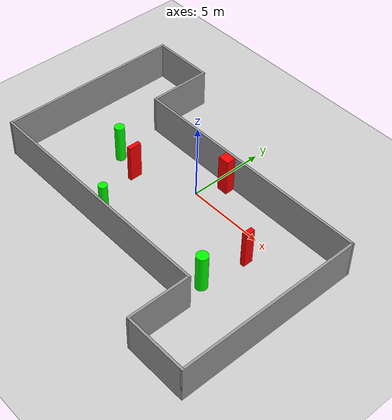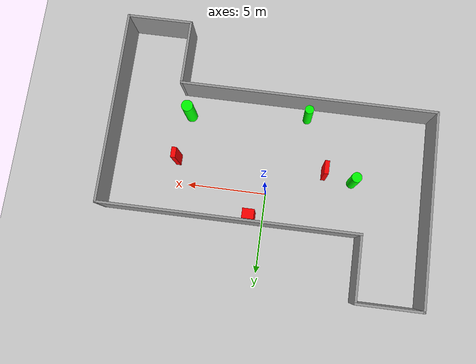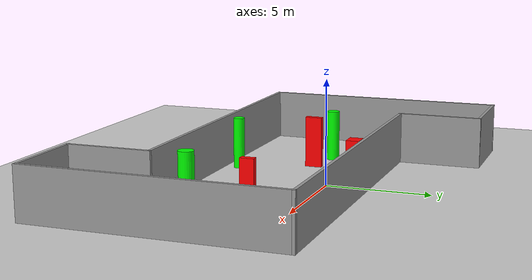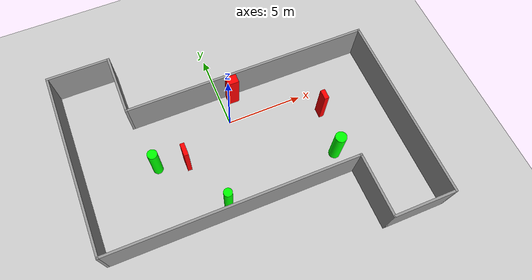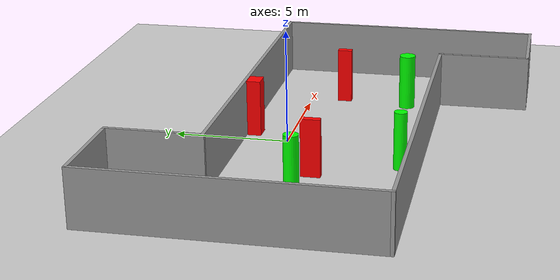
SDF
<sdf version="1.7">
 <world name="default">
  <light name="sun" type="directional">
   <pose>0 0 10 0 -0 0</pose>
   <diffuse>0.8 0.8 0.8 1</diffuse>
   <specular>0.2 0.2 0.2 1</specular>
   <attenuation>
    <range>1000</range>
    <constant>0.9</constant>
    <linear>0.01</linear>
    <quadratic>0.001</quadratic>
   </attenuation>
   <direction>-0.5 0.1 -0.9</direction>
   <spot><inner_angle>0</inner_angle><outer_angle>0</outer_angle><falloff>0</falloff></spot>
  </light>
  <model name="ground_plane">
   <static>1</static>
   <link name="link">
    <collision name="collision">
     <geometry><plane><normal>0 0 1</normal><size>100 100</size></plane></geometry>
     <surface>
      <contact><collide_bitmask>65535</collide_bitmask></contact>
      <friction><ode><mu>100</mu><mu2>50</mu2></ode></friction>
     </surface>
    </collision>
    <visual name="visual">
     <cast_shadows>0</cast_shadows>
     <geometry><plane><normal>0 0 1</normal><size>100 100</size></plane></geometry>
     <material>
      <script><uri>file://media/materials/scripts/gazebo.material</uri><name>Gazebo/Grey</name></script>
     </material>
    </visual>
   </link>
  </model>
  <gravity>0 0 -9.8</gravity>
  <magnetic_field>6e-06 2.3e-05 -4.2e-05</magnetic_field>
  <atmosphere type="adiabatic"/>
  <physics type="ode">
   <max_step_size>0.001</max_step_size>
   <real_time_factor>1</real_time_factor>
   <real_time_update_rate>1000</real_time_update_rate>
  </physics>
  <scene><ambient>0.4 0.4 0.4 1</ambient><background>0.7 0.7 0.7 1</background><shadows>1</shadows></scene>
  <spherical_coordinates>
   <surface_model>EARTH_WGS84</surface_model>
   <latitude_deg>0</latitude_deg>
   <longitude_deg>0</longitude_deg>
   <elevation>0</elevation>
   <heading_deg>0</heading_deg>
  </spherical_coordinates>
  <model name="my_base_walls">
   <link name="Wall_13">
    <collision name="Wall_13_Collision">
     <geometry><box><size>12.15 0.15 2.5</size></box></geometry>
     <pose>0 0 1.25 0 -0 0</pose>
    </collision>
    <visual name="Wall_13_Visual">
     <pose>0 0 1.25 0 -0 0</pose>
     <geometry><box><size>12.15 0.15 2.5</size></box></geometry>
     <material>
      <script><uri>file://media/materials/scripts/gazebo.material</uri><name>Gazebo/Grey</name></script>
      <ambient>1 1 1 1</ambient>
     </material>
     <meta><layer>0</layer></meta>
    </visual>
    <pose>10 -2 0 0 -0 1.5708</pose>
   </link>
   <link name="Wall_15">
    <collision name="Wall_15_Collision">
     <geometry><box><size>16.15 0.15 2.5</size></box></geometry>
     <pose>0 0 1.25 0 -0 0</pose>
    </collision>
    <visual name="Wall_15_Visual">
     <pose>0 0 1.25 0 -0 0</pose>
     <geometry><box><size>16.15 0.15 2.5</size></box></geometry>
     <material>
      <script><uri>file://media/materials/scripts/gazebo.material</uri><name>Gazebo/Grey</name></script>
      <ambient>1 1 1 1</ambient>
     </material>
     <meta><layer>0</layer></meta>
    </visual>
    <pose>2 4 0 0 -0 3.14159</pose>
   </link>
   <link name="Wall_17">
    <collision name="Wall_17_Collision">
     <geometry><box><size>4.15 0.15 2.5</size></box></geometry>
     <pose>0 0 1.25 0 -0 0</pose>
    </collision>
    <visual name="Wall_17_Visual">
     <pose>0 0 1.25 0 -0 0</pose>
     <geometry><box><size>4.15 0.15 2.5</size></box></geometry>
     <material>
      <script><uri>file://media/materials/scripts/gazebo.material</uri><name>Gazebo/Grey</name></script>
      <ambient>1 1 1 1</ambient>
     </material>
     <meta><layer>0</layer></meta>
    </visual>
    <pose>6 -6 0 0 -0 -1.5708</pose>
   </link>
   <link name="Wall_19">
    <collision name="Wall_19_Collision">
     <geometry><box><size>12.15 0.15 2.5</size></box></geometry>
     <pose>0 0 1.25 0 -0 0</pose>
    </collision>
    <visual name="Wall_19_Visual">
     <pose>0 0 1.25 0 -0 0</pose>
     <geometry><box><size>12.15 0.15 2.5</size></box></geometry>
     <material>
      <script><uri>file://media/materials/scripts/gazebo.material</uri><name>Gazebo/Grey</name></script>
      <ambient>1 1 1 1</ambient>
     </material>
     <meta><layer>0</layer></meta>
    </visual>
    <pose>-10 2 0 0 -0 1.5708</pose>
   </link>
   <link name="Wall_21">
    <collision name="Wall_21_Collision">
     <geometry><box><size>4.15 0.15 2.5</size></box></geometry>
     <pose>0 0 1.25 0 -0 0</pose>
    </collision>
    <visual name="Wall_21_Visual">
     <pose>0 0 1.25 0 -0 0</pose>
     <geometry><box><size>4.15 0.15 2.5</size></box></geometry>
     <material>
      <script><uri>file://media/materials/scripts/gazebo.material</uri><name>Gazebo/Grey</name></script>
      <ambient>1 1 1 1</ambient>
     </material>
     <meta><layer>0</layer></meta>
    </visual>
    <pose>-8 8 0 0 -0 0</pose>
   </link>
   <link name="Wall_23">
    <collision name="Wall_23_Collision">
     <geometry><box><size>4.15 0.15 2.5</size></box></geometry>
     <pose>0 0 1.25 0 -0 0</pose>
    </collision>
    <visual name="Wall_23_Visual">
     <pose>0 0 1.25 0 -0 0</pose>
     <geometry><box><size>4.15 0.15 2.5</size></box></geometry>
     <material>
      <script><uri>file://media/materials/scripts/gazebo.material</uri><name>Gazebo/Grey</name></script>
      <ambient>1 1 1 1</ambient>
     </material>
     <meta><layer>0</layer></meta>
    </visual>
    <pose>-6 6 0 0 -0 -1.5708</pose>
   </link>
   <link name="Wall_25">
    <collision name="Wall_25_Collision">
     <geometry><box><size>4.15 0.15 2.5</size></box></geometry>
     <pose>0 0 1.25 0 -0 0</pose>
    </collision>
    <visual name="Wall_25_Visual">
     <pose>0 0 1.25 0 -0 0</pose>
     <geometry><box><size>4.15 0.15 2.5</size></box></geometry>
     <material>
      <script><uri>file://media/materials/scripts/gazebo.material</uri><name>Gazebo/Grey</name></script>
      <ambient>1 1 1 1</ambient>
     </material>
     <meta><layer>0</layer></meta>
    </visual>
    <pose>8 -8 0 0 -0 0</pose>
   </link>
   <link name="Wall_9">
    <collision name="Wall_9_Collision">
     <geometry><box><size>16.15 0.15 2.5</size></box></geometry>
     <pose>0 0 1.25 0 -0 0</pose>
    </collision>
    <visual name="Wall_9_Visual">
     <pose>0 0 1.25 0 -0 0</pose>
     <geometry><box><size>16.15 0.15 2.5</size></box></geometry>
     <material>
      <script><uri>file://media/materials/scripts/gazebo.material</uri><name>Gazebo/Grey</name></script>
      <ambient>1 1 1 1</ambient>
     </material>
     <meta><layer>0</layer></meta>
    </visual>
    <pose>-2 -4 0 0 -0 3.14159</pose>
   </link>
   <static>1</static>
   <pose>-0 -2 0 0 -0 0</pose>
  </model>
  <model name="cylinder1">
   <static>1</static>
   <link name="link">
    <inertial>
     <mass>1</mass>
     <inertia><ixx>0.5</ixx><ixy>0</ixy><ixz>0</ixz><iyy>0.5</iyy><iyz>0</iyz><izz>1</izz></inertia>
    </inertial>
    <collision name="collision">
     <geometry><cylinder><radius>0.31566403837977386</radius><length>2.5</length></cylinder></geometry>
    </collision>
    <visual name="visual">
     <geometry><cylinder><radius>0.31566403837977386</radius><length>2.5</length></cylinder></geometry>
     <material>
      <ambient>0 1 0 1</ambient>
      <diffuse>0 1 0 1</diffuse>
      <specular>0.1 0.1 0.1 1</specular>
      <emissive>0 0 0 0</emissive>
     </material>
    </visual>
   </link>
   <pose>-5.4075273019279475 -1.3587973616688993 1.25 0 0 0</pose>
  </model>
  <model name="cylinder2">
   <static>1</static>
   <link name="link">
    <inertial>
     <mass>1</mass>
     <inertia><ixx>0.5</ixx><ixy>0</ixy><ixz>0</ixz><iyy>0.5</iyy><iyz>0</iyz><izz>1</izz></inertia>
    </inertial>
    <collision name="collision">
     <geometry><cylinder><radius>0.3619575772895416</radius><length>2.5</length></cylinder></geometry>
    </collision>
    <visual name="visual">
     <geometry><cylinder><radius>0.3619575772895416</radius><length>2.5</length></cylinder></geometry>
     <material>
      <ambient>0 1 0 1</ambient>
      <diffuse>0 1 0 1</diffuse>
      <specular>0.1 0.1 0.1 1</specular>
      <emissive>0 0 0 0</emissive>
     </material>
    </visual>
   </link>
   <pose>5.420031188755466 -4.539233012968099 1.25 0 0 0</pose>
  </model>
  <model name="cylinder3">
   <static>1</static>
   <link name="link">
    <inertial>
     <mass>1</mass>
     <inertia><ixx>0.5</ixx><ixy>0</ixy><ixz>0</ixz><iyy>0.5</iyy><iyz>0</iyz><izz>1</izz></inertia>
    </inertial>
    <collision name="collision">
     <geometry><cylinder><radius>0.27410456695688473</radius><length>2.5</length></cylinder></geometry>
    </collision>
    <visual name="visual">
     <geometry><cylinder><radius>0.27410456695688473</radius><length>2.5</length></cylinder></geometry>
     <material>
      <ambient>0 1 0 1</ambient>
      <diffuse>0 1 0 1</diffuse>
      <specular>0.1 0.1 0.1 1</specular>
      <emissive>0 0 0 0</emissive>
     </material>
    </visual>
   </link>
   <pose>-2.1184276350499296 -5.213851770664608 1.25 0 0 0</pose>
  </model>
  <model name="box1">
   <static>1</static>
   <link name="link">
    <inertial>
     <mass>1</mass>
     <inertia><ixx>0.083</ixx><ixy>0</ixy><ixz>0</ixz><iyy>0.083</iyy><iyz>0</iyz><izz>0.083</izz></inertia>
    </inertial>
    <collision name="collision">
     <geometry><box><size>0.7291120098722417 0.6048375039643668 2.5</size></box></geometry>
    </collision>
    <visual name="visual">
     <geometry><box><size>0.7291120098722417 0.6048375039643668 2.5</size></box></geometry>
     <material>
      <ambient>1 0 0 1</ambient>
      <diffuse>1 0 0 1</diffuse>
      <specular>0.1 0.1 0.1 1</specular>
      <emissive>0 0 0 0</emissive>
     </material>
    </visual>
    <sensor name="my_contact" type="contact">
     <contact><collision>box_collision</collision><topic>__default_topic__</topic></contact>
    </sensor>
   </link>
   <pose>0.8263814857725817 1.6007661383166285 1.25 0 0 0</pose>
  </model>
  <model name="box2">
   <static>1</static>
   <link name="link">
    <inertial>
     <mass>1</mass>
     <inertia><ixx>0.083</ixx><ixy>0</ixy><ixz>0</ixz><iyy>0.083</iyy><iyz>0</iyz><izz>0.083</izz></inertia>
    </inertial>
    <collision name="collision">
     <geometry><box><size>0.2978542213227243 0.642793306558732 2.5</size></box></geometry>
    </collision>
    <visual name="visual">
     <geometry><box><size>0.2978542213227243 0.642793306558732 2.5</size></box></geometry>
     <material>
      <ambient>1 0 0 1</ambient>
      <diffuse>1 0 0 1</diffuse>
      <specular>0.1 0.1 0.1 1</specular>
      <emissive>0 0 0 0</emissive>
     </material>
    </visual>
    <sensor name="my_contact" type="contact">
     <contact><collision>box_collision</collision><topic>__default_topic__</topic></contact>
    </sensor>
   </link>
   <pose>5.796232360689697 -1.5413491599707045 1.25 0 0 0</pose>
  </model>
  <model name="box3">
   <static>1</static>
   <link name="link">
    <inertial>
     <mass>1</mass>
     <inertia><ixx>0.083</ixx><ixy>0</ixy><ixz>0</ixz><iyy>0.083</iyy><iyz>0</iyz><izz>0.083</izz></inertia>
    </inertial>
    <collision name="collision">
     <geometry><box><size>0.2796818968026945 0.8250231699592206 2.5</size></box></geometry>
    </collision>
    <visual name="visual">
     <geometry><box><size>0.2796818968026945 0.8250231699592206 2.5</size></box></geometry>
     <material>
      <ambient>1 0 0 1</ambient>
      <diffuse>1 0 0 1</diffuse>
      <specular>0.1 0.1 0.1 1</specular>
      <emissive>0 0 0 0</emissive>
     </material>
    </visual>
    <sensor name="my_contact" type="contact">
     <contact><collision>box_collision</collision><topic>__default_topic__</topic></contact>
    </sensor>
   </link>
   <pose>-3.553490367149465 -1.7648156167368878 1.25 0 0 0</pose>
  </model>
 </world>
</sdf>
